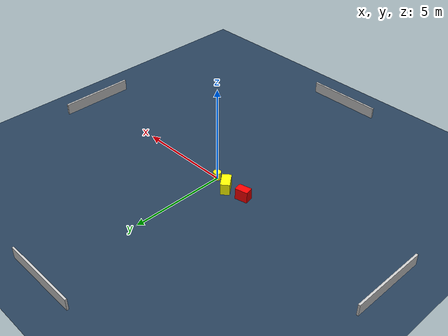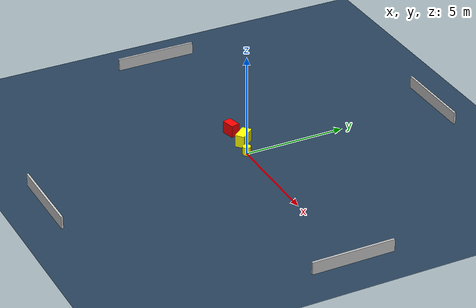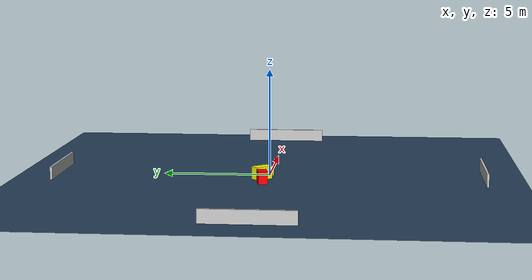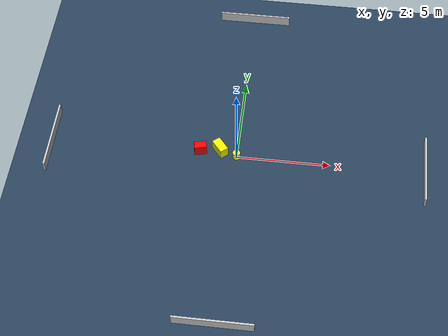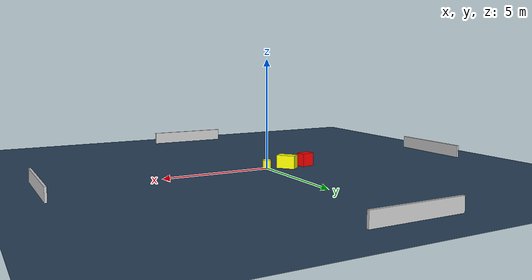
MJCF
<?xml version="1.0" ?>
<mujoco model="generated_environment">
  <option timestep="0.01" integrator="RK4" cone="elliptic"/>
  <default>
    <geom density="1"/>
  </default>
  <asset>
    <texture builtin="gradient" height="3072" name="skybox" rgb1="0.3 0.5 0.7" rgb2="0 0 0" type="skybox" width="512"/>
    <texture builtin="checker" height="300" name="groundplane" rgb1="0.2 0.3 0.4" rgb2="0.1 0.2 0.3" type="2d" width="300"/>
    <material name="groundplane" reflectance="0.2" texrepeat="5 5" texture="groundplane"/>
  </asset>
  <worldbody>
    <light dir="0 0 -1" directional="true" pos="0 0 1.5"/>
    <geom condim="3" friction="0.5 0.005 0.001" material="groundplane" name="floor" pos="0 0 0" size="0 0 0.05" type="plane"/>
    <body name="walls">
      <geom name="wall_1" condim="4" pos="-10.0 0.0 0.3" rgba="0.800000011920929 0.800000011920929 0.800000011920929 1.0" size="0.05 2.0 0.3" type="box"/>
      <geom name="wall_2" condim="4" pos="10.0 0.0 0.3" rgba="0.800000011920929 0.800000011920929 0.800000011920929 1.0" size="0.05 2.0 0.3" type="box"/>
      <geom name="wall_3" condim="4" pos="0.0 -10.0 0.3" rgba="0.800000011920929 0.800000011920929 0.800000011920929 1.0" size="2.0 0.05 0.3" type="box"/>
      <geom name="wall_4" condim="4" pos="0.0 10.0 0.3" rgba="0.800000011920929 0.800000011920929 0.800000011920929 1.0" size="2.0 0.05 0.3" type="box"/>
    </body>
    <body name="robot">
      <joint name="joint_x" type="slide" pos="0 0 0" axis="1 0 0"/>
      <joint name="joint_y" type="slide" pos="0 0 0" axis="0 1 0"/>
      <geom name="robot" type="cylinder" pos="0.0 0.0 0.2" size="0.2 0.2 0.0" mass="5.0" friction="1.0 0.005 0.0001" condim="4" rgba="1.0 1.0 0.0 1.0"/>
    </body>
    <body name="obstacle_1_movable">
      <geom name="obstacle_1_movable" condim="4" pos="-0.9118009080327085 0.29322263043730407 0.3" euler="0 0 219.03938176426075" friction="0.0 0.005 0.001" rgba="1.0 1.0 0.0 1.0" size="0.23431930727488615 0.42445010328487176 0.3" type="box" mass="0.1"/>
      <joint type="free"/>
    </body>
    <body name="obstacle_2_static">
      <geom name="obstacle_2_static" condim="4" pos="-1.9684193254179048 0.1792107692728707 0.3" euler="0 0 102.76033708981508" friction="0.0 0.005 0.001" rgba="1.0 0.0 0.0 1.0" size="0.2153672052419466 0.3285377327611976 0.3" type="box"/>
    </body>
  </worldbody>
  <actuator>
    <motor name="actuator_x" joint="joint_x" gear="1" ctrlrange="-1 1"/>
    <motor name="actuator_y" joint="joint_y" gear="1" ctrlrange="-1 1"/>
  </actuator>
</mujoco>
